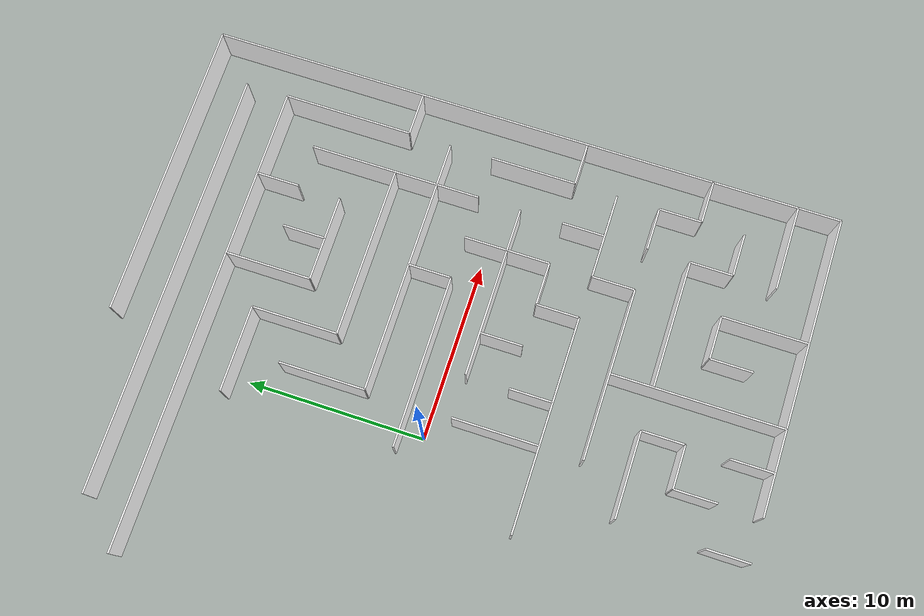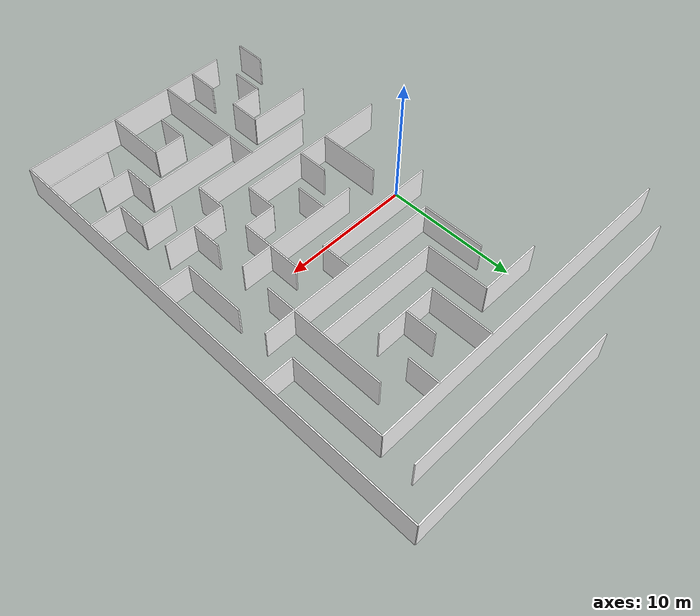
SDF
<sdf version="1.7">
 <model name="maze_3">
  <static>1</static>
  <link name="Wall_1">
   <collision name="Wall_1_Collision">
    <geometry><box><size>16.8000 0.1000 2.5000</size></box></geometry>
    <pose>0 0 1.2500 0 -0 0</pose>
   </collision>
   <visual name="Wall_1_Visual">
    <pose>0 0 1.2500 0 -0 0</pose>
    <geometry><box><size>16.8000 0.1000 2.5000</size></box></geometry>
    <material>
     <script><uri>file://media/materials/scripts/gazebo.material</uri><n>Gazebo/Grey</n></script>
     <ambient>1 1 1 1</ambient>
    </material>
    <meta><layer>0</layer></meta>
   </visual>
   <pose>9.600000 18.000000 0 0 -0 -0.00000</pose>
  </link>
  <link name="Wall_3">
   <collision name="Wall_3_Collision">
    <geometry><box><size>24.0000 0.1000 2.5000</size></box></geometry>
    <pose>0 0 1.2500 0 -0 0</pose>
   </collision>
   <visual name="Wall_3_Visual">
    <pose>0 0 1.2500 0 -0 0</pose>
    <geometry><box><size>24.0000 0.1000 2.5000</size></box></geometry>
    <material>
     <script><uri>file://media/materials/scripts/gazebo.material</uri><n>Gazebo/Grey</n></script>
     <ambient>1 1 1 1</ambient>
    </material>
    <meta><layer>0</layer></meta>
   </visual>
   <pose>3.600000 15.600000 0 0 -0 -0.00000</pose>
  </link>
  <link name="Wall_5">
   <collision name="Wall_5_Collision">
    <geometry><box><size>26.4000 0.1000 2.5000</size></box></geometry>
    <pose>0 0 1.2500 0 -0 0</pose>
   </collision>
   <visual name="Wall_5_Visual">
    <pose>0 0 1.2500 0 -0 0</pose>
    <geometry><box><size>26.4000 0.1000 2.5000</size></box></geometry>
    <material>
     <script><uri>file://media/materials/scripts/gazebo.material</uri><n>Gazebo/Grey</n></script>
     <ambient>1 1 1 1</ambient>
    </material>
    <meta><layer>0</layer></meta>
   </visual>
   <pose>2.400000 13.200000 0 0 -0 -0.00000</pose>
  </link>
  <link name="Wall_8">
   <collision name="Wall_8_Collision">
    <geometry><box><size>4.8000 0.1000 2.5000</size></box></geometry>
    <pose>0 0 1.2500 0 -0 0</pose>
   </collision>
   <visual name="Wall_8_Visual">
    <pose>0 0 1.2500 0 -0 0</pose>
    <geometry><box><size>4.8000 0.1000 2.5000</size></box></geometry>
    <material>
     <script><uri>file://media/materials/scripts/gazebo.material</uri><n>Gazebo/Grey</n></script>
     <ambient>1 1 1 1</ambient>
    </material>
    <meta><layer>0</layer></meta>
   </visual>
   <pose>1.200000 10.800000 0 0 -0 -0.00000</pose>
  </link>
  <link name="Wall_11">
   <collision name="Wall_11_Collision">
    <geometry><box><size>4.8000 0.1000 2.5000</size></box></geometry>
    <pose>0 0 1.2500 0 -0 0</pose>
   </collision>
   <visual name="Wall_11_Visual">
    <pose>0 0 1.2500 0 -0 0</pose>
    <geometry><box><size>4.8000 0.1000 2.5000</size></box></geometry>
    <material>
     <script><uri>file://media/materials/scripts/gazebo.material</uri><n>Gazebo/Grey</n></script>
     <ambient>1 1 1 1</ambient>
    </material>
    <meta><layer>0</layer></meta>
   </visual>
   <pose>8.400000 8.400000 0 0 -0 -0.00000</pose>
  </link>
  <link name="Wall_14">
   <collision name="Wall_14_Collision">
    <geometry><box><size>9.6000 0.1000 2.5000</size></box></geometry>
    <pose>0 0 1.2500 0 -0 0</pose>
   </collision>
   <visual name="Wall_14_Visual">
    <pose>0 0 1.2500 0 -0 0</pose>
    <geometry><box><size>9.6000 0.1000 2.5000</size></box></geometry>
    <material>
     <script><uri>file://media/materials/scripts/gazebo.material</uri><n>Gazebo/Grey</n></script>
     <ambient>1 1 1 1</ambient>
    </material>
    <meta><layer>0</layer></meta>
   </visual>
   <pose>8.400000 6.000000 0 0 -0 -0.00000</pose>
  </link>
  <link name="Wall_15">
   <collision name="Wall_15_Collision">
    <geometry><box><size>2.4000 0.1000 2.5000</size></box></geometry>
    <pose>0 0 1.2500 0 -0 0</pose>
   </collision>
   <visual name="Wall_15_Visual">
    <pose>0 0 1.2500 0 -0 0</pose>
    <geometry><box><size>2.4000 0.1000 2.5000</size></box></geometry>
    <material>
     <script><uri>file://media/materials/scripts/gazebo.material</uri><n>Gazebo/Grey</n></script>
     <ambient>1 1 1 1</ambient>
    </material>
    <meta><layer>0</layer></meta>
   </visual>
   <pose>16.800000 6.000000 0 0 -0 -0.00000</pose>
  </link>
  <link name="Wall_18">
   <collision name="Wall_18_Collision">
    <geometry><box><size>14.4000 0.1000 2.5000</size></box></geometry>
    <pose>0 0 1.2500 0 -0 0</pose>
   </collision>
   <visual name="Wall_18_Visual">
    <pose>0 0 1.2500 0 -0 0</pose>
    <geometry><box><size>14.4000 0.1000 2.5000</size></box></geometry>
    <material>
     <script><uri>file://media/materials/scripts/gazebo.material</uri><n>Gazebo/Grey</n></script>
     <ambient>1 1 1 1</ambient>
    </material>
    <meta><layer>0</layer></meta>
   </visual>
   <pose>8.400000 3.600000 0 0 -0 -0.00000</pose>
  </link>
  <link name="Wall_21">
   <collision name="Wall_21_Collision">
    <geometry><box><size>9.6000 0.1000 2.5000</size></box></geometry>
    <pose>0 0 1.2500 0 -0 0</pose>
   </collision>
   <visual name="Wall_21_Visual">
    <pose>0 0 1.2500 0 -0 0</pose>
    <geometry><box><size>9.6000 0.1000 2.5000</size></box></geometry>
    <material>
     <script><uri>file://media/materials/scripts/gazebo.material</uri><n>Gazebo/Grey</n></script>
     <ambient>1 1 1 1</ambient>
    </material>
    <meta><layer>0</layer></meta>
   </visual>
   <pose>3.600000 1.200000 0 0 -0 -0.00000</pose>
  </link>
  <link name="Wall_25">
   <collision name="Wall_25_Collision">
    <geometry><box><size>9.6000 0.1000 2.5000</size></box></geometry>
    <pose>0 0 1.2500 0 -0 0</pose>
   </collision>
   <visual name="Wall_25_Visual">
    <pose>0 0 1.2500 0 -0 0</pose>
    <geometry><box><size>9.6000 0.1000 2.5000</size></box></geometry>
    <material>
     <script><uri>file://media/materials/scripts/gazebo.material</uri><n>Gazebo/Grey</n></script>
     <ambient>1 1 1 1</ambient>
    </material>
    <meta><layer>0</layer></meta>
   </visual>
   <pose>8.400000 -1.200000 0 0 -0 -0.00000</pose>
  </link>
  <link name="Wall_27">
   <collision name="Wall_27_Collision">
    <geometry><box><size>2.4000 0.1000 2.5000</size></box></geometry>
    <pose>0 0 1.2500 0 -0 0</pose>
   </collision>
   <visual name="Wall_27_Visual">
    <pose>0 0 1.2500 0 -0 0</pose>
    <geometry><box><size>2.4000 0.1000 2.5000</size></box></geometry>
    <material>
     <script><uri>file://media/materials/scripts/gazebo.material</uri><n>Gazebo/Grey</n></script>
     <ambient>1 1 1 1</ambient>
    </material>
    <meta><layer>0</layer></meta>
   </visual>
   <pose>9.600000 -3.600000 0 0 -0 -0.00000</pose>
  </link>
  <link name="Wall_28">
   <collision name="Wall_28_Collision">
    <geometry><box><size>2.4000 0.1000 2.5000</size></box></geometry>
    <pose>0 0 1.2500 0 -0 0</pose>
   </collision>
   <visual name="Wall_28_Visual">
    <pose>0 0 1.2500 0 -0 0</pose>
    <geometry><box><size>2.4000 0.1000 2.5000</size></box></geometry>
    <material>
     <script><uri>file://media/materials/scripts/gazebo.material</uri><n>Gazebo/Grey</n></script>
     <ambient>1 1 1 1</ambient>
    </material>
    <meta><layer>0</layer></meta>
   </visual>
   <pose>16.800000 -3.600000 0 0 -0 -0.00000</pose>
  </link>
  <link name="Wall_30">
   <collision name="Wall_30_Collision">
    <geometry><box><size>12.0000 0.1000 2.5000</size></box></geometry>
    <pose>0 0 1.2500 0 -0 0</pose>
   </collision>
   <visual name="Wall_30_Visual">
    <pose>0 0 1.2500 0 -0 0</pose>
    <geometry><box><size>12.0000 0.1000 2.5000</size></box></geometry>
    <material>
     <script><uri>file://media/materials/scripts/gazebo.material</uri><n>Gazebo/Grey</n></script>
     <ambient>1 1 1 1</ambient>
    </material>
    <meta><layer>0</layer></meta>
   </visual>
   <pose>2.400000 -6.000000 0 0 -0 -0.00000</pose>
  </link>
  <link name="Wall_31">
   <collision name="Wall_31_Collision">
    <geometry><box><size>4.8000 0.1000 2.5000</size></box></geometry>
    <pose>0 0 1.2500 0 -0 0</pose>
   </collision>
   <visual name="Wall_31_Visual">
    <pose>0 0 1.2500 0 -0 0</pose>
    <geometry><box><size>4.8000 0.1000 2.5000</size></box></geometry>
    <material>
     <script><uri>file://media/materials/scripts/gazebo.material</uri><n>Gazebo/Grey</n></script>
     <ambient>1 1 1 1</ambient>
    </material>
    <meta><layer>0</layer></meta>
   </visual>
   <pose>13.200000 -6.000000 0 0 -0 -0.00000</pose>
  </link>
  <link name="Wall_34">
   <collision name="Wall_34_Collision">
    <geometry><box><size>9.6000 0.1000 2.5000</size></box></geometry>
    <pose>0 0 1.2500 0 -0 0</pose>
   </collision>
   <visual name="Wall_34_Visual">
    <pose>0 0 1.2500 0 -0 0</pose>
    <geometry><box><size>9.6000 0.1000 2.5000</size></box></geometry>
    <material>
     <script><uri>file://media/materials/scripts/gazebo.material</uri><n>Gazebo/Grey</n></script>
     <ambient>1 1 1 1</ambient>
    </material>
    <meta><layer>0</layer></meta>
   </visual>
   <pose>6.000000 -8.400000 0 0 -0 -0.00000</pose>
  </link>
  <link name="Wall_35">
   <collision name="Wall_35_Collision">
    <geometry><box><size>2.4000 0.1000 2.5000</size></box></geometry>
    <pose>0 0 1.2500 0 -0 0</pose>
   </collision>
   <visual name="Wall_35_Visual">
    <pose>0 0 1.2500 0 -0 0</pose>
    <geometry><box><size>2.4000 0.1000 2.5000</size></box></geometry>
    <material>
     <script><uri>file://media/materials/scripts/gazebo.material</uri><n>Gazebo/Grey</n></script>
     <ambient>1 1 1 1</ambient>
    </material>
    <meta><layer>0</layer></meta>
   </visual>
   <pose>14.400000 -8.400000 0 0 -0 -0.00000</pose>
  </link>
  <link name="Wall_38">
   <collision name="Wall_38_Collision">
    <geometry><box><size>4.8000 0.1000 2.5000</size></box></geometry>
    <pose>0 0 1.2500 0 -0 0</pose>
   </collision>
   <visual name="Wall_38_Visual">
    <pose>0 0 1.2500 0 -0 0</pose>
    <geometry><box><size>4.8000 0.1000 2.5000</size></box></geometry>
    <material>
     <script><uri>file://media/materials/scripts/gazebo.material</uri><n>Gazebo/Grey</n></script>
     <ambient>1 1 1 1</ambient>
    </material>
    <meta><layer>0</layer></meta>
   </visual>
   <pose>1.200000 -10.800000 0 0 -0 -0.00000</pose>
  </link>
  <link name="Wall_39">
   <collision name="Wall_39_Collision">
    <geometry><box><size>7.2000 0.1000 2.5000</size></box></geometry>
    <pose>0 0 1.2500 0 -0 0</pose>
   </collision>
   <visual name="Wall_39_Visual">
    <pose>0 0 1.2500 0 -0 0</pose>
    <geometry><box><size>7.2000 0.1000 2.5000</size></box></geometry>
    <material>
     <script><uri>file://media/materials/scripts/gazebo.material</uri><n>Gazebo/Grey</n></script>
     <ambient>1 1 1 1</ambient>
    </material>
    <meta><layer>0</layer></meta>
   </visual>
   <pose>9.600000 -10.800000 0 0 -0 -0.00000</pose>
  </link>
  <link name="Wall_40">
   <collision name="Wall_40_Collision">
    <geometry><box><size>2.4000 0.1000 2.5000</size></box></geometry>
    <pose>0 0 1.2500 0 -0 0</pose>
   </collision>
   <visual name="Wall_40_Visual">
    <pose>0 0 1.2500 0 -0 0</pose>
    <geometry><box><size>2.4000 0.1000 2.5000</size></box></geometry>
    <material>
     <script><uri>file://media/materials/scripts/gazebo.material</uri><n>Gazebo/Grey</n></script>
     <ambient>1 1 1 1</ambient>
    </material>
    <meta><layer>0</layer></meta>
   </visual>
   <pose>16.800000 -10.800000 0 0 -0 -0.00000</pose>
  </link>
  <link name="Wall_42">
   <collision name="Wall_42_Collision">
    <geometry><box><size>2.4000 0.1000 2.5000</size></box></geometry>
    <pose>0 0 1.2500 0 -0 0</pose>
   </collision>
   <visual name="Wall_42_Visual">
    <pose>0 0 1.2500 0 -0 0</pose>
    <geometry><box><size>2.4000 0.1000 2.5000</size></box></geometry>
    <material>
     <script><uri>file://media/materials/scripts/gazebo.material</uri><n>Gazebo/Grey</n></script>
     <ambient>1 1 1 1</ambient>
    </material>
    <meta><layer>0</layer></meta>
   </visual>
   <pose>2.400000 -13.200000 0 0 -0 -0.00000</pose>
  </link>
  <link name="Wall_43">
   <collision name="Wall_43_Collision">
    <geometry><box><size>2.4000 0.1000 2.5000</size></box></geometry>
    <pose>0 0 1.2500 0 -0 0</pose>
   </collision>
   <visual name="Wall_43_Visual">
    <pose>0 0 1.2500 0 -0 0</pose>
    <geometry><box><size>2.4000 0.1000 2.5000</size></box></geometry>
    <material>
     <script><uri>file://media/materials/scripts/gazebo.material</uri><n>Gazebo/Grey</n></script>
     <ambient>1 1 1 1</ambient>
    </material>
    <meta><layer>0</layer></meta>
   </visual>
   <pose>9.600000 -13.200000 0 0 -0 -0.00000</pose>
  </link>
  <link name="Wall_44">
   <collision name="Wall_44_Collision">
    <geometry><box><size>2.4000 0.1000 2.5000</size></box></geometry>
    <pose>0 0 1.2500 0 -0 0</pose>
   </collision>
   <visual name="Wall_44_Visual">
    <pose>0 0 1.2500 0 -0 0</pose>
    <geometry><box><size>2.4000 0.1000 2.5000</size></box></geometry>
    <material>
     <script><uri>file://media/materials/scripts/gazebo.material</uri><n>Gazebo/Grey</n></script>
     <ambient>1 1 1 1</ambient>
    </material>
    <meta><layer>0</layer></meta>
   </visual>
   <pose>14.400000 -13.200000 0 0 -0 -0.00000</pose>
  </link>
  <link name="Wall_48">
   <collision name="Wall_48_Collision">
    <geometry><box><size>4.8000 0.1000 2.5000</size></box></geometry>
    <pose>0 0 1.2500 0 -0 0</pose>
   </collision>
   <visual name="Wall_48_Visual">
    <pose>0 0 1.2500 0 -0 0</pose>
    <geometry><box><size>4.8000 0.1000 2.5000</size></box></geometry>
    <material>
     <script><uri>file://media/materials/scripts/gazebo.material</uri><n>Gazebo/Grey</n></script>
     <ambient>1 1 1 1</ambient>
    </material>
    <meta><layer>0</layer></meta>
   </visual>
   <pose>15.600000 -15.600000 0 0 -0 -0.00000</pose>
  </link>
  <link name="Wall_50">
   <collision name="Wall_50_Collision">
    <geometry><box><size>16.8000 0.1000 2.5000</size></box></geometry>
    <pose>0 0 1.2500 0 -0 0</pose>
   </collision>
   <visual name="Wall_50_Visual">
    <pose>0 0 1.2500 0 -0 0</pose>
    <geometry><box><size>16.8000 0.1000 2.5000</size></box></geometry>
    <material>
     <script><uri>file://media/materials/scripts/gazebo.material</uri><n>Gazebo/Grey</n></script>
     <ambient>1 1 1 1</ambient>
    </material>
    <meta><layer>0</layer></meta>
   </visual>
   <pose>9.600000 -18.000000 0 0 -0 -0.00000</pose>
  </link>
  <link name="Wall_74">
   <collision name="Wall_74_Collision">
    <geometry><box><size>2.4000 0.1000 2.5000</size></box></geometry>
    <pose>0 0 1.2500 0 -0 0</pose>
   </collision>
   <visual name="Wall_74_Visual">
    <pose>0 0 1.2500 0 -0 0</pose>
    <geometry><box><size>2.4000 0.1000 2.5000</size></box></geometry>
    <material>
     <script><uri>file://media/materials/scripts/gazebo.material</uri><n>Gazebo/Grey</n></script>
     <ambient>1 1 1 1</ambient>
    </material>
    <meta><layer>0</layer></meta>
   </visual>
   <pose>-1.200000 -16.800000 0 0 -0 -1.57080</pose>
  </link>
  <link name="Wall_75">
   <collision name="Wall_75_Collision">
    <geometry><box><size>4.8000 0.1000 2.5000</size></box></geometry>
    <pose>0 0 1.2500 0 -0 0</pose>
   </collision>
   <visual name="Wall_75_Visual">
    <pose>0 0 1.2500 0 -0 0</pose>
    <geometry><box><size>4.8000 0.1000 2.5000</size></box></geometry>
    <material>
     <script><uri>file://media/materials/scripts/gazebo.material</uri><n>Gazebo/Grey</n></script>
     <ambient>1 1 1 1</ambient>
    </material>
    <meta><layer>0</layer></meta>
   </visual>
   <pose>1.200000 6.000000 0 0 -0 -1.57080</pose>
  </link>
  <link name="Wall_76">
   <collision name="Wall_76_Collision">
    <geometry><box><size>4.8000 0.1000 2.5000</size></box></geometry>
    <pose>0 0 1.2500 0 -0 0</pose>
   </collision>
   <visual name="Wall_76_Visual">
    <pose>0 0 1.2500 0 -0 0</pose>
    <geometry><box><size>4.8000 0.1000 2.5000</size></box></geometry>
    <material>
     <script><uri>file://media/materials/scripts/gazebo.material</uri><n>Gazebo/Grey</n></script>
     <ambient>1 1 1 1</ambient>
    </material>
    <meta><layer>0</layer></meta>
   </visual>
   <pose>1.200000 -3.600000 0 0 -0 -1.57080</pose>
  </link>
  <link name="Wall_77">
   <collision name="Wall_77_Collision">
    <geometry><box><size>2.4000 0.1000 2.5000</size></box></geometry>
    <pose>0 0 1.2500 0 -0 0</pose>
   </collision>
   <visual name="Wall_77_Visual">
    <pose>0 0 1.2500 0 -0 0</pose>
    <geometry><box><size>2.4000 0.1000 2.5000</size></box></geometry>
    <material>
     <script><uri>file://media/materials/scripts/gazebo.material</uri><n>Gazebo/Grey</n></script>
     <ambient>1 1 1 1</ambient>
    </material>
    <meta><layer>0</layer></meta>
   </visual>
   <pose>1.200000 -14.400000 0 0 -0 -1.57080</pose>
  </link>
  <link name="Wall_78">
   <collision name="Wall_78_Collision">
    <geometry><box><size>4.8000 0.1000 2.5000</size></box></geometry>
    <pose>0 0 1.2500 0 -0 0</pose>
   </collision>
   <visual name="Wall_78_Visual">
    <pose>0 0 1.2500 0 -0 0</pose>
    <geometry><box><size>4.8000 0.1000 2.5000</size></box></geometry>
    <material>
     <script><uri>file://media/materials/scripts/gazebo.material</uri><n>Gazebo/Grey</n></script>
     <ambient>1 1 1 1</ambient>
    </material>
    <meta><layer>0</layer></meta>
   </visual>
   <pose>3.600000 8.400000 0 0 -0 -1.57080</pose>
  </link>
  <link name="Wall_79">
   <collision name="Wall_79_Collision">
    <geometry><box><size>2.4000 0.1000 2.5000</size></box></geometry>
    <pose>0 0 1.2500 0 -0 0</pose>
   </collision>
   <visual name="Wall_79_Visual">
    <pose>0 0 1.2500 0 -0 0</pose>
    <geometry><box><size>2.4000 0.1000 2.5000</size></box></geometry>
    <material>
     <script><uri>file://media/materials/scripts/gazebo.material</uri><n>Gazebo/Grey</n></script>
     <ambient>1 1 1 1</ambient>
    </material>
    <meta><layer>0</layer></meta>
   </visual>
   <pose>3.600000 -4.800000 0 0 -0 -1.57080</pose>
  </link>
  <link name="Wall_80">
   <collision name="Wall_80_Collision">
    <geometry><box><size>2.4000 0.1000 2.5000</size></box></geometry>
    <pose>0 0 1.2500 0 -0 0</pose>
   </collision>
   <visual name="Wall_80_Visual">
    <pose>0 0 1.2500 0 -0 0</pose>
    <geometry><box><size>2.4000 0.1000 2.5000</size></box></geometry>
    <material>
     <script><uri>file://media/materials/scripts/gazebo.material</uri><n>Gazebo/Grey</n></script>
     <ambient>1 1 1 1</ambient>
    </material>
    <meta><layer>0</layer></meta>
   </visual>
   <pose>3.600000 -12.000000 0 0 -0 -1.57080</pose>
  </link>
  <link name="Wall_81">
   <collision name="Wall_81_Collision">
    <geometry><box><size>2.4000 0.1000 2.5000</size></box></geometry>
    <pose>0 0 1.2500 0 -0 0</pose>
   </collision>
   <visual name="Wall_81_Visual">
    <pose>0 0 1.2500 0 -0 0</pose>
    <geometry><box><size>2.4000 0.1000 2.5000</size></box></geometry>
    <material>
     <script><uri>file://media/materials/scripts/gazebo.material</uri><n>Gazebo/Grey</n></script>
     <ambient>1 1 1 1</ambient>
    </material>
    <meta><layer>0</layer></meta>
   </visual>
   <pose>3.600000 -16.800000 0 0 -0 -1.57080</pose>
  </link>
  <link name="Wall_82">
   <collision name="Wall_82_Collision">
    <geometry><box><size>4.8000 0.1000 2.5000</size></box></geometry>
    <pose>0 0 1.2500 0 -0 0</pose>
   </collision>
   <visual name="Wall_82_Visual">
    <pose>0 0 1.2500 0 -0 0</pose>
    <geometry><box><size>4.8000 0.1000 2.5000</size></box></geometry>
    <material>
     <script><uri>file://media/materials/scripts/gazebo.material</uri><n>Gazebo/Grey</n></script>
     <ambient>1 1 1 1</ambient>
    </material>
    <meta><layer>0</layer></meta>
   </visual>
   <pose>6.000000 10.800000 0 0 -0 -1.57080</pose>
  </link>
  <link name="Wall_83">
   <collision name="Wall_83_Collision">
    <geometry><box><size>2.4000 0.1000 2.5000</size></box></geometry>
    <pose>0 0 1.2500 0 -0 0</pose>
   </collision>
   <visual name="Wall_83_Visual">
    <pose>0 0 1.2500 0 -0 0</pose>
    <geometry><box><size>2.4000 0.1000 2.5000</size></box></geometry>
    <material>
     <script><uri>file://media/materials/scripts/gazebo.material</uri><n>Gazebo/Grey</n></script>
     <ambient>1 1 1 1</ambient>
    </material>
    <meta><layer>0</layer></meta>
   </visual>
   <pose>6.000000 -2.400000 0 0 -0 -1.57080</pose>
  </link>
  <link name="Wall_84">
   <collision name="Wall_84_Collision">
    <geometry><box><size>9.6000 0.1000 2.5000</size></box></geometry>
    <pose>0 0 1.2500 0 -0 0</pose>
   </collision>
   <visual name="Wall_84_Visual">
    <pose>0 0 1.2500 0 -0 0</pose>
    <geometry><box><size>9.6000 0.1000 2.5000</size></box></geometry>
    <material>
     <script><uri>file://media/materials/scripts/gazebo.material</uri><n>Gazebo/Grey</n></script>
     <ambient>1 1 1 1</ambient>
    </material>
    <meta><layer>0</layer></meta>
   </visual>
   <pose>6.000000 -13.200000 0 0 -0 -1.57080</pose>
  </link>
  <link name="Wall_85">
   <collision name="Wall_85_Collision">
    <geometry><box><size>2.4000 0.1000 2.5000</size></box></geometry>
    <pose>0 0 1.2500 0 -0 0</pose>
   </collision>
   <visual name="Wall_85_Visual">
    <pose>0 0 1.2500 0 -0 0</pose>
    <geometry><box><size>2.4000 0.1000 2.5000</size></box></geometry>
    <material>
     <script><uri>file://media/materials/scripts/gazebo.material</uri><n>Gazebo/Grey</n></script>
     <ambient>1 1 1 1</ambient>
    </material>
    <meta><layer>0</layer></meta>
   </visual>
   <pose>8.400000 9.600000 0 0 -0 -1.57080</pose>
  </link>
  <link name="Wall_86">
   <collision name="Wall_86_Collision">
    <geometry><box><size>2.4000 0.1000 2.5000</size></box></geometry>
    <pose>0 0 1.2500 0 -0 0</pose>
   </collision>
   <visual name="Wall_86_Visual">
    <pose>0 0 1.2500 0 -0 0</pose>
    <geometry><box><size>2.4000 0.1000 2.5000</size></box></geometry>
    <material>
     <script><uri>file://media/materials/scripts/gazebo.material</uri><n>Gazebo/Grey</n></script>
     <ambient>1 1 1 1</ambient>
    </material>
    <meta><layer>0</layer></meta>
   </visual>
   <pose>8.400000 2.400000 0 0 -0 -1.57080</pose>
  </link>
  <link name="Wall_87">
   <collision name="Wall_87_Collision">
    <geometry><box><size>2.4000 0.1000 2.5000</size></box></geometry>
    <pose>0 0 1.2500 0 -0 0</pose>
   </collision>
   <visual name="Wall_87_Visual">
    <pose>0 0 1.2500 0 -0 0</pose>
    <geometry><box><size>2.4000 0.1000 2.5000</size></box></geometry>
    <material>
     <script><uri>file://media/materials/scripts/gazebo.material</uri><n>Gazebo/Grey</n></script>
     <ambient>1 1 1 1</ambient>
    </material>
    <meta><layer>0</layer></meta>
   </visual>
   <pose>8.400000 -4.800000 0 0 -0 -1.57080</pose>
  </link>
  <link name="Wall_88">
   <collision name="Wall_88_Collision">
    <geometry><box><size>2.4000 0.1000 2.5000</size></box></geometry>
    <pose>0 0 1.2500 0 -0 0</pose>
   </collision>
   <visual name="Wall_88_Visual">
    <pose>0 0 1.2500 0 -0 0</pose>
    <geometry><box><size>2.4000 0.1000 2.5000</size></box></geometry>
    <material>
     <script><uri>file://media/materials/scripts/gazebo.material</uri><n>Gazebo/Grey</n></script>
     <ambient>1 1 1 1</ambient>
    </material>
    <meta><layer>0</layer></meta>
   </visual>
   <pose>8.400000 -14.400000 0 0 -0 -1.57080</pose>
  </link>
  <link name="Wall_89">
   <collision name="Wall_89_Collision">
    <geometry><box><size>2.4000 0.1000 2.5000</size></box></geometry>
    <pose>0 0 1.2500 0 -0 0</pose>
   </collision>
   <visual name="Wall_89_Visual">
    <pose>0 0 1.2500 0 -0 0</pose>
    <geometry><box><size>2.4000 0.1000 2.5000</size></box></geometry>
    <material>
     <script><uri>file://media/materials/scripts/gazebo.material</uri><n>Gazebo/Grey</n></script>
     <ambient>1 1 1 1</ambient>
    </material>
    <meta><layer>0</layer></meta>
   </visual>
   <pose>10.800000 12.000000 0 0 -0 -1.57080</pose>
  </link>
  <link name="Wall_90">
   <collision name="Wall_90_Collision">
    <geometry><box><size>4.8000 0.1000 2.5000</size></box></geometry>
    <pose>0 0 1.2500 0 -0 0</pose>
   </collision>
   <visual name="Wall_90_Visual">
    <pose>0 0 1.2500 0 -0 0</pose>
    <geometry><box><size>4.8000 0.1000 2.5000</size></box></geometry>
    <material>
     <script><uri>file://media/materials/scripts/gazebo.material</uri><n>Gazebo/Grey</n></script>
     <ambient>1 1 1 1</ambient>
    </material>
    <meta><layer>0</layer></meta>
   </visual>
   <pose>10.800000 -1.200000 0 0 -0 -1.57080</pose>
  </link>
  <link name="Wall_91">
   <collision name="Wall_91_Collision">
    <geometry><box><size>2.4000 0.1000 2.5000</size></box></geometry>
    <pose>0 0 1.2500 0 -0 0</pose>
   </collision>
   <visual name="Wall_91_Visual">
    <pose>0 0 1.2500 0 -0 0</pose>
    <geometry><box><size>2.4000 0.1000 2.5000</size></box></geometry>
    <material>
     <script><uri>file://media/materials/scripts/gazebo.material</uri><n>Gazebo/Grey</n></script>
     <ambient>1 1 1 1</ambient>
    </material>
    <meta><layer>0</layer></meta>
   </visual>
   <pose>10.800000 -7.200000 0 0 -0 -1.57080</pose>
  </link>
  <link name="Wall_92">
   <collision name="Wall_92_Collision">
    <geometry><box><size>4.8000 0.1000 2.5000</size></box></geometry>
    <pose>0 0 1.2500 0 -0 0</pose>
   </collision>
   <visual name="Wall_92_Visual">
    <pose>0 0 1.2500 0 -0 0</pose>
    <geometry><box><size>4.8000 0.1000 2.5000</size></box></geometry>
    <material>
     <script><uri>file://media/materials/scripts/gazebo.material</uri><n>Gazebo/Grey</n></script>
     <ambient>1 1 1 1</ambient>
    </material>
    <meta><layer>0</layer></meta>
   </visual>
   <pose>10.800000 -15.600000 0 0 -0 -1.57080</pose>
  </link>
  <link name="Wall_93">
   <collision name="Wall_93_Collision">
    <geometry><box><size>9.6000 0.1000 2.5000</size></box></geometry>
    <pose>0 0 1.2500 0 -0 0</pose>
   </collision>
   <visual name="Wall_93_Visual">
    <pose>0 0 1.2500 0 -0 0</pose>
    <geometry><box><size>9.6000 0.1000 2.5000</size></box></geometry>
    <material>
     <script><uri>file://media/materials/scripts/gazebo.material</uri><n>Gazebo/Grey</n></script>
     <ambient>1 1 1 1</ambient>
    </material>
    <meta><layer>0</layer></meta>
   </visual>
   <pose>13.200000 6.000000 0 0 -0 -1.57080</pose>
  </link>
  <link name="Wall_94">
   <collision name="Wall_94_Collision">
    <geometry><box><size>2.4000 0.1000 2.5000</size></box></geometry>
    <pose>0 0 1.2500 0 -0 0</pose>
   </collision>
   <visual name="Wall_94_Visual">
    <pose>0 0 1.2500 0 -0 0</pose>
    <geometry><box><size>2.4000 0.1000 2.5000</size></box></geometry>
    <material>
     <script><uri>file://media/materials/scripts/gazebo.material</uri><n>Gazebo/Grey</n></script>
     <ambient>1 1 1 1</ambient>
    </material>
    <meta><layer>0</layer></meta>
   </visual>
   <pose>13.200000 -4.800000 0 0 -0 -1.57080</pose>
  </link>
  <link name="Wall_95">
   <collision name="Wall_95_Collision">
    <geometry><box><size>2.4000 0.1000 2.5000</size></box></geometry>
    <pose>0 0 1.2500 0 -0 0</pose>
   </collision>
   <visual name="Wall_95_Visual">
    <pose>0 0 1.2500 0 -0 0</pose>
    <geometry><box><size>2.4000 0.1000 2.5000</size></box></geometry>
    <material>
     <script><uri>file://media/materials/scripts/gazebo.material</uri><n>Gazebo/Grey</n></script>
     <ambient>1 1 1 1</ambient>
    </material>
    <meta><layer>0</layer></meta>
   </visual>
   <pose>13.200000 -12.000000 0 0 -0 -1.57080</pose>
  </link>
  <link name="Wall_96">
   <collision name="Wall_96_Collision">
    <geometry><box><size>7.2000 0.1000 2.5000</size></box></geometry>
    <pose>0 0 1.2500 0 -0 0</pose>
   </collision>
   <visual name="Wall_96_Visual">
    <pose>0 0 1.2500 0 -0 0</pose>
    <geometry><box><size>7.2000 0.1000 2.5000</size></box></geometry>
    <material>
     <script><uri>file://media/materials/scripts/gazebo.material</uri><n>Gazebo/Grey</n></script>
     <ambient>1 1 1 1</ambient>
    </material>
    <meta><layer>0</layer></meta>
   </visual>
   <pose>15.600000 9.600000 0 0 -0 -1.57080</pose>
  </link>
  <link name="Wall_97">
   <collision name="Wall_97_Collision">
    <geometry><box><size>4.8000 0.1000 2.5000</size></box></geometry>
    <pose>0 0 1.2500 0 -0 0</pose>
   </collision>
   <visual name="Wall_97_Visual">
    <pose>0 0 1.2500 0 -0 0</pose>
    <geometry><box><size>4.8000 0.1000 2.5000</size></box></geometry>
    <material>
     <script><uri>file://media/materials/scripts/gazebo.material</uri><n>Gazebo/Grey</n></script>
     <ambient>1 1 1 1</ambient>
    </material>
    <meta><layer>0</layer></meta>
   </visual>
   <pose>15.600000 -1.200000 0 0 -0 -1.57080</pose>
  </link>
  <link name="Wall_98">
   <collision name="Wall_98_Collision">
    <geometry><box><size>2.4000 0.1000 2.5000</size></box></geometry>
    <pose>0 0 1.2500 0 -0 0</pose>
   </collision>
   <visual name="Wall_98_Visual">
    <pose>0 0 1.2500 0 -0 0</pose>
    <geometry><box><size>2.4000 0.1000 2.5000</size></box></geometry>
    <material>
     <script><uri>file://media/materials/scripts/gazebo.material</uri><n>Gazebo/Grey</n></script>
     <ambient>1 1 1 1</ambient>
    </material>
    <meta><layer>0</layer></meta>
   </visual>
   <pose>15.600000 -9.600000 0 0 -0 -1.57080</pose>
  </link>
  <link name="Wall_99">
   <collision name="Wall_99_Collision">
    <geometry><box><size>36.0000 0.1000 2.5000</size></box></geometry>
    <pose>0 0 1.2500 0 -0 0</pose>
   </collision>
   <visual name="Wall_99_Visual">
    <pose>0 0 1.2500 0 -0 0</pose>
    <geometry><box><size>36.0000 0.1000 2.5000</size></box></geometry>
    <material>
     <script><uri>file://media/materials/scripts/gazebo.material</uri><n>Gazebo/Grey</n></script>
     <ambient>1 1 1 1</ambient>
    </material>
    <meta><layer>0</layer></meta>
   </visual>
   <pose>18.000000 -0.000000 0 0 -0 -1.57080</pose>
  </link>
 </model>
</sdf>
